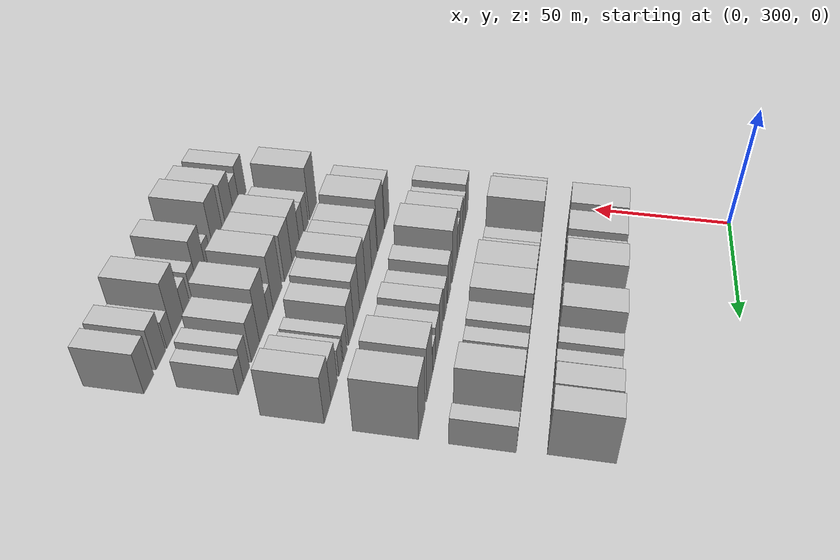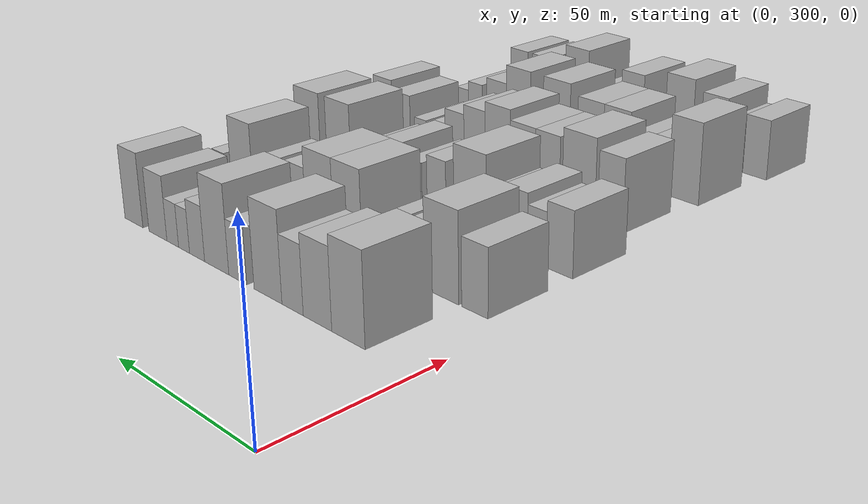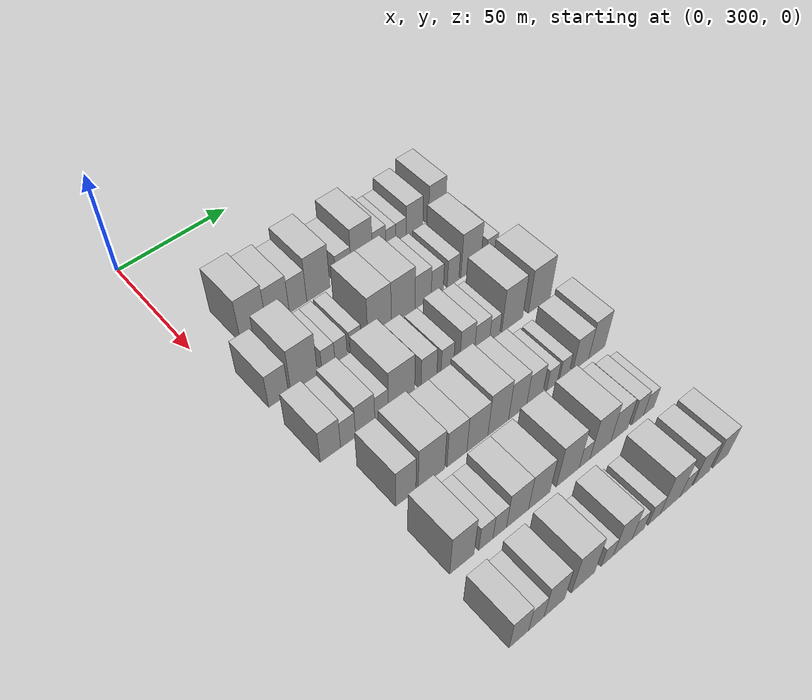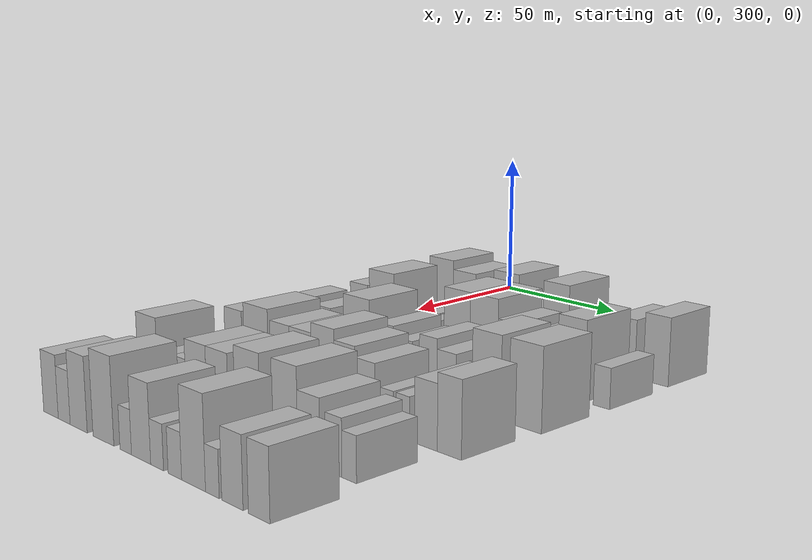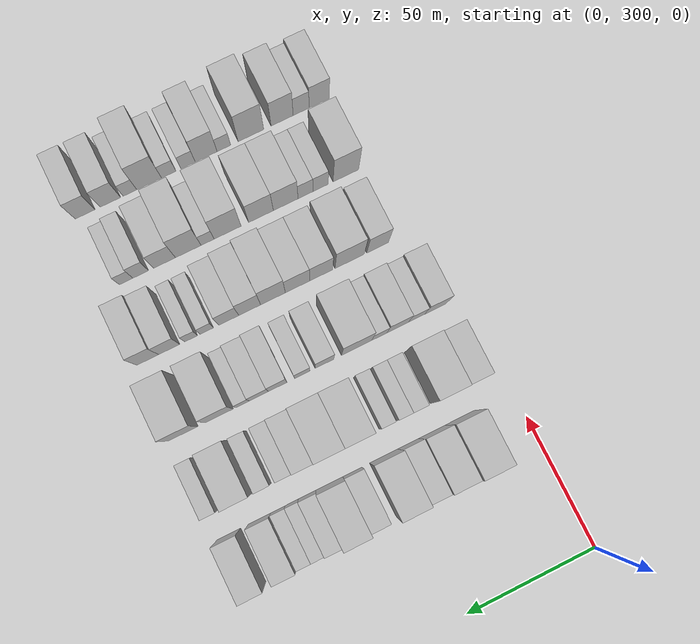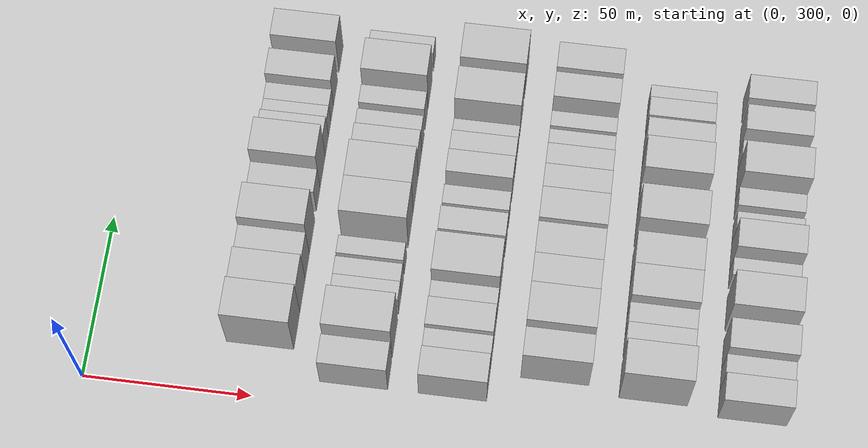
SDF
<sdf version="1.6">
 <world name="default">
  <model name="building_89">
   <static>1</static>
   <pose>50.0000 321.3980 0 0.000000 0.000000 0.000000</pose>
   <link name="link">
    <pose>0 0 12.00 0 0 0</pose>
    <collision name="collision"><geometry><box><size>20.0000 11.5874 24.0000</size></box></geometry></collision>
    <visual name="visual">
     <cast_shadows>0</cast_shadows>
     <geometry><box><size>20.0000 11.5874 24.0000</size></box></geometry>
     <material>
      <script>
       <uri>model://HANNAS_wall/materials/scripts</uri>
       <uri>model://HANNAS_wall/materials/textures</uri>
       <name>vrc/HANNAS_wall</name>
      </script>
     </material>
    </visual>
   </link>
  </model>
  <model name="building_90">
   <static>1</static>
   <pose>50.0000 332.3962 0 0.000000 0.000000 0.000000</pose>
   <link name="link">
    <pose>0 0 10.50 0 0 0</pose>
    <collision name="collision"><geometry><box><size>20.0000 10.4090 21.0000</size></box></geometry></collision>
    <visual name="visual">
     <cast_shadows>0</cast_shadows>
     <geometry><box><size>20.0000 10.4090 21.0000</size></box></geometry>
     <material>
      <script>
       <uri>model://HANNAS_wall/materials/scripts</uri>
       <uri>model://HANNAS_wall/materials/textures</uri>
       <name>vrc/HANNAS_wall</name>
      </script>
     </material>
    </visual>
   </link>
  </model>
  <model name="building_91">
   <static>1</static>
   <pose>50.0000 341.6545 0 0.000000 0.000000 0.000000</pose>
   <link name="link">
    <pose>0 0 9.00 0 0 0</pose>
    <collision name="collision"><geometry><box><size>20.0000 8.1077 18.0000</size></box></geometry></collision>
    <visual name="visual">
     <cast_shadows>0</cast_shadows>
     <geometry><box><size>20.0000 8.1077 18.0000</size></box></geometry>
     <material>
      <script>
       <uri>model://HANNAS_wall/materials/scripts</uri>
       <uri>model://HANNAS_wall/materials/textures</uri>
       <name>vrc/HANNAS_wall</name>
      </script>
     </material>
    </visual>
   </link>
  </model>
  <model name="building_92">
   <static>1</static>
   <pose>50.0000 351.2242 0 0.000000 0.000000 0.000000</pose>
   <link name="link">
    <pose>0 0 12.00 0 0 0</pose>
    <collision name="collision"><geometry><box><size>20.0000 11.0317 24.0000</size></box></geometry></collision>
    <visual name="visual">
     <cast_shadows>0</cast_shadows>
     <geometry><box><size>20.0000 11.0317 24.0000</size></box></geometry>
     <material>
      <script>
       <uri>model://HANNAS_wall/materials/scripts</uri>
       <uri>model://HANNAS_wall/materials/textures</uri>
       <name>vrc/HANNAS_wall</name>
      </script>
     </material>
    </visual>
   </link>
  </model>
  <model name="building_93">
   <static>1</static>
   <pose>50.0000 363.4700 0 0.000000 0.000000 0.000000</pose>
   <link name="link">
    <pose>0 0 7.50 0 0 0</pose>
    <collision name="collision"><geometry><box><size>20.0000 7.4601 15.0000</size></box></geometry></collision>
    <visual name="visual">
     <cast_shadows>0</cast_shadows>
     <geometry><box><size>20.0000 7.4601 15.0000</size></box></geometry>
     <material>
      <script>
       <uri>model://HANNAS_wall/materials/scripts</uri>
       <uri>model://HANNAS_wall/materials/textures</uri>
       <name>vrc/HANNAS_wall</name>
      </script>
     </material>
    </visual>
   </link>
  </model>
  <model name="building_94">
   <static>1</static>
   <pose>50.0000 372.4424 0 0.000000 0.000000 0.000000</pose>
   <link name="link">
    <pose>0 0 12.00 0 0 0</pose>
    <collision name="collision"><geometry><box><size>20.0000 10.4846 24.0000</size></box></geometry></collision>
    <visual name="visual">
     <cast_shadows>0</cast_shadows>
     <geometry><box><size>20.0000 10.4846 24.0000</size></box></geometry>
     <material>
      <script>
       <uri>model://HANNAS_wall/materials/scripts</uri>
       <uri>model://HANNAS_wall/materials/textures</uri>
       <name>vrc/HANNAS_wall</name>
      </script>
     </material>
    </visual>
   </link>
  </model>
  <model name="building_95">
   <static>1</static>
   <pose>50.0000 381.0466 0 0.000000 0.000000 0.000000</pose>
   <link name="link">
    <pose>0 0 7.50 0 0 0</pose>
    <collision name="collision"><geometry><box><size>20.0000 6.7238 15.0000</size></box></geometry></collision>
    <visual name="visual">
     <cast_shadows>0</cast_shadows>
     <geometry><box><size>20.0000 6.7238 15.0000</size></box></geometry>
     <material>
      <script>
       <uri>model://HANNAS_wall/materials/scripts</uri>
       <uri>model://HANNAS_wall/materials/textures</uri>
       <name>vrc/HANNAS_wall</name>
      </script>
     </material>
    </visual>
   </link>
  </model>
  <model name="building_96">
   <static>1</static>
   <pose>50.0000 386.9304 0 0.000000 0.000000 0.000000</pose>
   <link name="link">
    <pose>0 0 6.00 0 0 0</pose>
    <collision name="collision"><geometry><box><size>20.0000 5.0438 12.0000</size></box></geometry></collision>
    <visual name="visual">
     <cast_shadows>0</cast_shadows>
     <geometry><box><size>20.0000 5.0438 12.0000</size></box></geometry>
     <material>
      <script>
       <uri>model://HANNAS_wall/materials/scripts</uri>
       <uri>model://HANNAS_wall/materials/textures</uri>
       <name>vrc/HANNAS_wall</name>
      </script>
     </material>
    </visual>
   </link>
  </model>
  <model name="building_97">
   <static>1</static>
   <pose>50.0000 392.1922 0 0.000000 0.000000 0.000000</pose>
   <link name="link">
    <pose>0 0 6.00 0 0 0</pose>
    <collision name="collision"><geometry><box><size>20.0000 5.4799 12.0000</size></box></geometry></collision>
    <visual name="visual">
     <cast_shadows>0</cast_shadows>
     <geometry><box><size>20.0000 5.4799 12.0000</size></box></geometry>
     <material>
      <script>
       <uri>model://HANNAS_wall/materials/scripts</uri>
       <uri>model://HANNAS_wall/materials/textures</uri>
       <name>vrc/HANNAS_wall</name>
      </script>
     </material>
    </visual>
   </link>
  </model>
  <model name="building_98">
   <static>1</static>
   <pose>50.0000 399.2381 0 0.000000 0.000000 0.000000</pose>
   <link name="link">
    <pose>0 0 9.00 0 0 0</pose>
    <collision name="collision"><geometry><box><size>20.0000 8.6118 18.0000</size></box></geometry></collision>
    <visual name="visual">
     <cast_shadows>0</cast_shadows>
     <geometry><box><size>20.0000 8.6118 18.0000</size></box></geometry>
     <material>
      <script>
       <uri>model://HANNAS_wall/materials/scripts</uri>
       <uri>model://HANNAS_wall/materials/textures</uri>
       <name>vrc/HANNAS_wall</name>
      </script>
     </material>
    </visual>
   </link>
  </model>
  <model name="building_99">
   <static>1</static>
   <pose>50.0000 411.0259 0 0.000000 0.000000 0.000000</pose>
   <link name="link">
    <pose>0 0 10.50 0 0 0</pose>
    <collision name="collision"><geometry><box><size>20.0000 8.9638 21.0000</size></box></geometry></collision>
    <visual name="visual">
     <cast_shadows>0</cast_shadows>
     <geometry><box><size>20.0000 8.9638 21.0000</size></box></geometry>
     <material>
      <script>
       <uri>model://HANNAS_wall/materials/scripts</uri>
       <uri>model://HANNAS_wall/materials/textures</uri>
       <name>vrc/HANNAS_wall</name>
      </script>
     </material>
    </visual>
   </link>
  </model>
  <model name="building_203">
   <static>1</static>
   <pose>79.0000 311.1663 0 0.000000 0.000000 0.000000</pose>
   <link name="link">
    <pose>0 0 9.00 0 0 0</pose>
    <collision name="collision"><geometry><box><size>20.0000 8.6754 18.0000</size></box></geometry></collision>
    <visual name="visual">
     <cast_shadows>0</cast_shadows>
     <geometry><box><size>20.0000 8.6754 18.0000</size></box></geometry>
     <material>
      <script>
       <uri>model://HANNAS_wall/materials/scripts</uri>
       <uri>model://HANNAS_wall/materials/textures</uri>
       <name>vrc/HANNAS_wall</name>
      </script>
     </material>
    </visual>
   </link>
  </model>
  <model name="building_204">
   <static>1</static>
   <pose>79.0000 322.4119 0 0.000000 0.000000 0.000000</pose>
   <link name="link">
    <pose>0 0 12.00 0 0 0</pose>
    <collision name="collision"><geometry><box><size>20.0000 11.8157 24.0000</size></box></geometry></collision>
    <visual name="visual">
     <cast_shadows>0</cast_shadows>
     <geometry><box><size>20.0000 11.8157 24.0000</size></box></geometry>
     <material>
      <script>
       <uri>model://HANNAS_wall/materials/scripts</uri>
       <uri>model://HANNAS_wall/materials/textures</uri>
       <name>vrc/HANNAS_wall</name>
      </script>
     </material>
    </visual>
   </link>
  </model>
  <model name="building_205">
   <static>1</static>
   <pose>79.0000 333.2981 0 0.000000 0.000000 0.000000</pose>
   <link name="link">
    <pose>0 0 6.00 0 0 0</pose>
    <collision name="collision"><geometry><box><size>20.0000 5.9567 12.0000</size></box></geometry></collision>
    <visual name="visual">
     <cast_shadows>0</cast_shadows>
     <geometry><box><size>20.0000 5.9567 12.0000</size></box></geometry>
     <material>
      <script>
       <uri>model://HANNAS_wall/materials/scripts</uri>
       <uri>model://HANNAS_wall/materials/textures</uri>
       <name>vrc/HANNAS_wall</name>
      </script>
     </material>
    </visual>
   </link>
  </model>
  <model name="building_206">
   <static>1</static>
   <pose>79.0000 339.0503 0 0.000000 0.000000 0.000000</pose>
   <link name="link">
    <pose>0 0 6.00 0 0 0</pose>
    <collision name="collision"><geometry><box><size>20.0000 5.5478 12.0000</size></box></geometry></collision>
    <visual name="visual">
     <cast_shadows>0</cast_shadows>
     <geometry><box><size>20.0000 5.5478 12.0000</size></box></geometry>
     <material>
      <script>
       <uri>model://HANNAS_wall/materials/scripts</uri>
       <uri>model://HANNAS_wall/materials/textures</uri>
       <name>vrc/HANNAS_wall</name>
      </script>
     </material>
    </visual>
   </link>
  </model>
  <model name="building_207">
   <static>1</static>
   <pose>79.0000 345.6395 0 0.000000 0.000000 0.000000</pose>
   <link name="link">
    <pose>0 0 6.00 0 0 0</pose>
    <collision name="collision"><geometry><box><size>20.0000 5.6306 12.0000</size></box></geometry></collision>
    <visual name="visual">
     <cast_shadows>0</cast_shadows>
     <geometry><box><size>20.0000 5.6306 12.0000</size></box></geometry>
     <material>
      <script>
       <uri>model://HANNAS_wall/materials/scripts</uri>
       <uri>model://HANNAS_wall/materials/textures</uri>
       <name>vrc/HANNAS_wall</name>
      </script>
     </material>
    </visual>
   </link>
  </model>
  <model name="building_208">
   <static>1</static>
   <pose>79.0000 357.0507 0 0.000000 0.000000 0.000000</pose>
   <link name="link">
    <pose>0 0 12.00 0 0 0</pose>
    <collision name="collision"><geometry><box><size>20.0000 11.1918 24.0000</size></box></geometry></collision>
    <visual name="visual">
     <cast_shadows>0</cast_shadows>
     <geometry><box><size>20.0000 11.1918 24.0000</size></box></geometry>
     <material>
      <script>
       <uri>model://HANNAS_wall/materials/scripts</uri>
       <uri>model://HANNAS_wall/materials/textures</uri>
       <name>vrc/HANNAS_wall</name>
      </script>
     </material>
    </visual>
   </link>
  </model>
  <model name="building_209">
   <static>1</static>
   <pose>79.0000 368.3990 0 0.000000 0.000000 0.000000</pose>
   <link name="link">
    <pose>0 0 12.00 0 0 0</pose>
    <collision name="collision"><geometry><box><size>20.0000 11.5048 24.0000</size></box></geometry></collision>
    <visual name="visual">
     <cast_shadows>0</cast_shadows>
     <geometry><box><size>20.0000 11.5048 24.0000</size></box></geometry>
     <material>
      <script>
       <uri>model://HANNAS_wall/materials/scripts</uri>
       <uri>model://HANNAS_wall/materials/textures</uri>
       <name>vrc/HANNAS_wall</name>
      </script>
     </material>
    </visual>
   </link>
  </model>
  <model name="building_210">
   <static>1</static>
   <pose>79.0000 378.1976 0 0.000000 0.000000 0.000000</pose>
   <link name="link">
    <pose>0 0 9.00 0 0 0</pose>
    <collision name="collision"><geometry><box><size>20.0000 8.0924 18.0000</size></box></geometry></collision>
    <visual name="visual">
     <cast_shadows>0</cast_shadows>
     <geometry><box><size>20.0000 8.0924 18.0000</size></box></geometry>
     <material>
      <script>
       <uri>model://HANNAS_wall/materials/scripts</uri>
       <uri>model://HANNAS_wall/materials/textures</uri>
       <name>vrc/HANNAS_wall</name>
      </script>
     </material>
    </visual>
   </link>
  </model>
  <model name="building_211">
   <static>1</static>
   <pose>79.0000 385.3006 0 0.000000 0.000000 0.000000</pose>
   <link name="link">
    <pose>0 0 7.50 0 0 0</pose>
    <collision name="collision"><geometry><box><size>20.0000 6.1135 15.0000</size></box></geometry></collision>
    <visual name="visual">
     <cast_shadows>0</cast_shadows>
     <geometry><box><size>20.0000 6.1135 15.0000</size></box></geometry>
     <material>
      <script>
       <uri>model://HANNAS_wall/materials/scripts</uri>
       <uri>model://HANNAS_wall/materials/textures</uri>
       <name>vrc/HANNAS_wall</name>
      </script>
     </material>
    </visual>
   </link>
  </model>
  <model name="building_212">
   <static>1</static>
   <pose>79.0000 393.3649 0 0.000000 0.000000 0.000000</pose>
   <link name="link">
    <pose>0 0 7.50 0 0 0</pose>
    <collision name="collision"><geometry><box><size>20.0000 6.0150 15.0000</size></box></geometry></collision>
    <visual name="visual">
     <cast_shadows>0</cast_shadows>
     <geometry><box><size>20.0000 6.0150 15.0000</size></box></geometry>
     <material>
      <script>
       <uri>model://HANNAS_wall/materials/scripts</uri>
       <uri>model://HANNAS_wall/materials/textures</uri>
       <name>vrc/HANNAS_wall</name>
      </script>
     </material>
    </visual>
   </link>
  </model>
  <model name="building_213">
   <static>1</static>
   <pose>79.0000 402.4878 0 0.000000 0.000000 0.000000</pose>
   <link name="link">
    <pose>0 0 12.00 0 0 0</pose>
    <collision name="collision"><geometry><box><size>20.0000 10.2309 24.0000</size></box></geometry></collision>
    <visual name="visual">
     <cast_shadows>0</cast_shadows>
     <geometry><box><size>20.0000 10.2309 24.0000</size></box></geometry>
     <material>
      <script>
       <uri>model://HANNAS_wall/materials/scripts</uri>
       <uri>model://HANNAS_wall/materials/textures</uri>
       <name>vrc/HANNAS_wall</name>
      </script>
     </material>
    </visual>
   </link>
  </model>
  <model name="building_214">
   <static>1</static>
   <pose>79.0000 413.4826 0 0.000000 0.000000 0.000000</pose>
   <link name="link">
    <pose>0 0 6.00 0 0 0</pose>
    <collision name="collision"><geometry><box><size>20.0000 5.7587 12.0000</size></box></geometry></collision>
    <visual name="visual">
     <cast_shadows>0</cast_shadows>
     <geometry><box><size>20.0000 5.7587 12.0000</size></box></geometry>
     <material>
      <script>
       <uri>model://HANNAS_wall/materials/scripts</uri>
       <uri>model://HANNAS_wall/materials/textures</uri>
       <name>vrc/HANNAS_wall</name>
      </script>
     </material>
    </visual>
   </link>
  </model>
  <model name="building_313">
   <static>1</static>
   <pose>108.0000 311.2907 0 0.000000 0.000000 0.000000</pose>
   <link name="link">
    <pose>0 0 9.00 0 0 0</pose>
    <collision name="collision"><geometry><box><size>20.0000 8.7245 18.0000</size></box></geometry></collision>
    <visual name="visual">
     <cast_shadows>0</cast_shadows>
     <geometry><box><size>20.0000 8.7245 18.0000</size></box></geometry>
     <material>
      <script>
       <uri>model://HANNAS_wall/materials/scripts</uri>
       <uri>model://HANNAS_wall/materials/textures</uri>
       <name>vrc/HANNAS_wall</name>
      </script>
     </material>
    </visual>
   </link>
  </model>
  <model name="building_314">
   <static>1</static>
   <pose>108.0000 318.9091 0 0.000000 0.000000 0.000000</pose>
   <link name="link">
    <pose>0 0 7.50 0 0 0</pose>
    <collision name="collision"><geometry><box><size>20.0000 6.5122 15.0000</size></box></geometry></collision>
    <visual name="visual">
     <cast_shadows>0</cast_shadows>
     <geometry><box><size>20.0000 6.5122 15.0000</size></box></geometry>
     <material>
      <script>
       <uri>model://HANNAS_wall/materials/scripts</uri>
       <uri>model://HANNAS_wall/materials/textures</uri>
       <name>vrc/HANNAS_wall</name>
      </script>
     </material>
    </visual>
   </link>
  </model>
  <model name="building_315">
   <static>1</static>
   <pose>108.0000 326.4444 0 0.000000 0.000000 0.000000</pose>
   <link name="link">
    <pose>0 0 9.00 0 0 0</pose>
    <collision name="collision"><geometry><box><size>20.0000 8.5585 18.0000</size></box></geometry></collision>
    <visual name="visual">
     <cast_shadows>0</cast_shadows>
     <geometry><box><size>20.0000 8.5585 18.0000</size></box></geometry>
     <material>
      <script>
       <uri>model://HANNAS_wall/materials/scripts</uri>
       <uri>model://HANNAS_wall/materials/textures</uri>
       <name>vrc/HANNAS_wall</name>
      </script>
     </material>
    </visual>
   </link>
  </model>
  <model name="building_316">
   <static>1</static>
   <pose>108.0000 333.7687 0 0.000000 0.000000 0.000000</pose>
   <link name="link">
    <pose>0 0 7.50 0 0 0</pose>
    <collision name="collision"><geometry><box><size>20.0000 6.0901 15.0000</size></box></geometry></collision>
    <visual name="visual">
     <cast_shadows>0</cast_shadows>
     <geometry><box><size>20.0000 6.0901 15.0000</size></box></geometry>
     <material>
      <script>
       <uri>model://HANNAS_wall/materials/scripts</uri>
       <uri>model://HANNAS_wall/materials/textures</uri>
       <name>vrc/HANNAS_wall</name>
      </script>
     </material>
    </visual>
   </link>
  </model>
  <model name="building_317">
   <static>1</static>
   <pose>108.0000 342.7837 0 0.000000 0.000000 0.000000</pose>
   <link name="link">
    <pose>0 0 12.00 0 0 0</pose>
    <collision name="collision"><geometry><box><size>20.0000 11.9399 24.0000</size></box></geometry></collision>
    <visual name="visual">
     <cast_shadows>0</cast_shadows>
     <geometry><box><size>20.0000 11.9399 24.0000</size></box></geometry>
     <material>
      <script>
       <uri>model://HANNAS_wall/materials/scripts</uri>
       <uri>model://HANNAS_wall/materials/textures</uri>
       <name>vrc/HANNAS_wall</name>
      </script>
     </material>
    </visual>
   </link>
  </model>
  <model name="building_318">
   <static>1</static>
   <pose>108.0000 355.4357 0 0.000000 0.000000 0.000000</pose>
   <link name="link">
    <pose>0 0 9.00 0 0 0</pose>
    <collision name="collision"><geometry><box><size>20.0000 7.3642 18.0000</size></box></geometry></collision>
    <visual name="visual">
     <cast_shadows>0</cast_shadows>
     <geometry><box><size>20.0000 7.3642 18.0000</size></box></geometry>
     <material>
      <script>
       <uri>model://HANNAS_wall/materials/scripts</uri>
       <uri>model://HANNAS_wall/materials/textures</uri>
       <name>vrc/HANNAS_wall</name>
      </script>
     </material>
    </visual>
   </link>
  </model>
  <model name="building_319">
   <static>1</static>
   <pose>108.0000 364.1421 0 0.000000 0.000000 0.000000</pose>
   <link name="link">
    <pose>0 0 7.50 0 0 0</pose>
    <collision name="collision"><geometry><box><size>20.0000 6.0486 15.0000</size></box></geometry></collision>
    <visual name="visual">
     <cast_shadows>0</cast_shadows>
     <geometry><box><size>20.0000 6.0486 15.0000</size></box></geometry>
     <material>
      <script>
       <uri>model://HANNAS_wall/materials/scripts</uri>
       <uri>model://HANNAS_wall/materials/textures</uri>
       <name>vrc/HANNAS_wall</name>
      </script>
     </material>
    </visual>
   </link>
  </model>
  <model name="building_320">
   <static>1</static>
   <pose>108.0000 373.7871 0 0.000000 0.000000 0.000000</pose>
   <link name="link">
    <pose>0 0 9.00 0 0 0</pose>
    <collision name="collision"><geometry><box><size>20.0000 7.2414 18.0000</size></box></geometry></collision>
    <visual name="visual">
     <cast_shadows>0</cast_shadows>
     <geometry><box><size>20.0000 7.2414 18.0000</size></box></geometry>
     <material>
      <script>
       <uri>model://HANNAS_wall/materials/scripts</uri>
       <uri>model://HANNAS_wall/materials/textures</uri>
       <name>vrc/HANNAS_wall</name>
      </script>
     </material>
    </visual>
   </link>
  </model>
  <model name="building_321">
   <static>1</static>
   <pose>108.0000 381.1521 0 0.000000 0.000000 0.000000</pose>
   <link name="link">
    <pose>0 0 7.50 0 0 0</pose>
    <collision name="collision"><geometry><box><size>20.0000 7.4886 15.0000</size></box></geometry></collision>
    <visual name="visual">
     <cast_shadows>0</cast_shadows>
     <geometry><box><size>20.0000 7.4886 15.0000</size></box></geometry>
     <material>
      <script>
       <uri>model://HANNAS_wall/materials/scripts</uri>
       <uri>model://HANNAS_wall/materials/textures</uri>
       <name>vrc/HANNAS_wall</name>
      </script>
     </material>
    </visual>
   </link>
  </model>
  <model name="building_322">
   <static>1</static>
   <pose>108.0000 387.4862 0 0.000000 0.000000 0.000000</pose>
   <link name="link">
    <pose>0 0 6.00 0 0 0</pose>
    <collision name="collision"><geometry><box><size>20.0000 5.1796 12.0000</size></box></geometry></collision>
    <visual name="visual">
     <cast_shadows>0</cast_shadows>
     <geometry><box><size>20.0000 5.1796 12.0000</size></box></geometry>
     <material>
      <script>
       <uri>model://HANNAS_wall/materials/scripts</uri>
       <uri>model://HANNAS_wall/materials/textures</uri>
       <name>vrc/HANNAS_wall</name>
      </script>
     </material>
    </visual>
   </link>
  </model>
  <model name="building_323">
   <static>1</static>
   <pose>108.0000 396.4554 0 0.000000 0.000000 0.000000</pose>
   <link name="link">
    <pose>0 0 12.00 0 0 0</pose>
    <collision name="collision"><geometry><box><size>20.0000 10.7587 24.0000</size></box></geometry></collision>
    <visual name="visual">
     <cast_shadows>0</cast_shadows>
     <geometry><box><size>20.0000 10.7587 24.0000</size></box></geometry>
     <material>
      <script>
       <uri>model://HANNAS_wall/materials/scripts</uri>
       <uri>model://HANNAS_wall/materials/textures</uri>
       <name>vrc/HANNAS_wall</name>
      </script>
     </material>
    </visual>
   </link>
  </model>
  <model name="building_324">
   <static>1</static>
   <pose>108.0000 410.5487 0 0.000000 0.000000 0.000000</pose>
   <link name="link">
    <pose>0 0 12.00 0 0 0</pose>
    <collision name="collision"><geometry><box><size>20.0000 11.4279 24.0000</size></box></geometry></collision>
    <visual name="visual">
     <cast_shadows>0</cast_shadows>
     <geometry><box><size>20.0000 11.4279 24.0000</size></box></geometry>
     <material>
      <script>
       <uri>model://HANNAS_wall/materials/scripts</uri>
       <uri>model://HANNAS_wall/materials/textures</uri>
       <name>vrc/HANNAS_wall</name>
      </script>
     </material>
    </visual>
   </link>
  </model>
  <model name="building_421">
   <static>1</static>
   <pose>137.0000 319.7330 0 0.000000 0.000000 0.000000</pose>
   <link name="link">
    <pose>0 0 10.50 0 0 0</pose>
    <collision name="collision"><geometry><box><size>20.0000 8.7053 21.0000</size></box></geometry></collision>
    <visual name="visual">
     <cast_shadows>0</cast_shadows>
     <geometry><box><size>20.0000 8.7053 21.0000</size></box></geometry>
     <material>
      <script>
       <uri>model://HANNAS_wall/materials/scripts</uri>
       <uri>model://HANNAS_wall/materials/textures</uri>
       <name>vrc/HANNAS_wall</name>
      </script>
     </material>
    </visual>
   </link>
  </model>
  <model name="building_422">
   <static>1</static>
   <pose>137.0000 330.9472 0 0.000000 0.000000 0.000000</pose>
   <link name="link">
    <pose>0 0 12.00 0 0 0</pose>
    <collision name="collision"><geometry><box><size>20.0000 11.7231 24.0000</size></box></geometry></collision>
    <visual name="visual">
     <cast_shadows>0</cast_shadows>
     <geometry><box><size>20.0000 11.7231 24.0000</size></box></geometry>
     <material>
      <script>
       <uri>model://HANNAS_wall/materials/scripts</uri>
       <uri>model://HANNAS_wall/materials/textures</uri>
       <name>vrc/HANNAS_wall</name>
      </script>
     </material>
    </visual>
   </link>
  </model>
  <model name="building_423">
   <static>1</static>
   <pose>137.0000 342.3413 0 0.000000 0.000000 0.000000</pose>
   <link name="link">
    <pose>0 0 10.50 0 0 0</pose>
    <collision name="collision"><geometry><box><size>20.0000 9.0650 21.0000</size></box></geometry></collision>
    <visual name="visual">
     <cast_shadows>0</cast_shadows>
     <geometry><box><size>20.0000 9.0650 21.0000</size></box></geometry>
     <material>
      <script>
       <uri>model://HANNAS_wall/materials/scripts</uri>
       <uri>model://HANNAS_wall/materials/textures</uri>
       <name>vrc/HANNAS_wall</name>
      </script>
     </material>
    </visual>
   </link>
  </model>
  <model name="building_424">
   <static>1</static>
   <pose>137.0000 351.7460 0 0.000000 0.000000 0.000000</pose>
   <link name="link">
    <pose>0 0 10.50 0 0 0</pose>
    <collision name="collision"><geometry><box><size>20.0000 9.7444 21.0000</size></box></geometry></collision>
    <visual name="visual">
     <cast_shadows>0</cast_shadows>
     <geometry><box><size>20.0000 9.7444 21.0000</size></box></geometry>
     <material>
      <script>
       <uri>model://HANNAS_wall/materials/scripts</uri>
       <uri>model://HANNAS_wall/materials/textures</uri>
       <name>vrc/HANNAS_wall</name>
      </script>
     </material>
    </visual>
   </link>
  </model>
  <model name="building_425">
   <static>1</static>
   <pose>137.0000 361.5297 0 0.000000 0.000000 0.000000</pose>
   <link name="link">
    <pose>0 0 12.00 0 0 0</pose>
    <collision name="collision"><geometry><box><size>20.0000 9.8230 24.0000</size></box></geometry></collision>
    <visual name="visual">
     <cast_shadows>0</cast_shadows>
     <geometry><box><size>20.0000 9.8230 24.0000</size></box></geometry>
     <material>
      <script>
       <uri>model://HANNAS_wall/materials/scripts</uri>
       <uri>model://HANNAS_wall/materials/textures</uri>
       <name>vrc/HANNAS_wall</name>
      </script>
     </material>
    </visual>
   </link>
  </model>
  <model name="building_426">
   <static>1</static>
   <pose>137.0000 370.7570 0 0.000000 0.000000 0.000000</pose>
   <link name="link">
    <pose>0 0 10.50 0 0 0</pose>
    <collision name="collision"><geometry><box><size>20.0000 8.6314 21.0000</size></box></geometry></collision>
    <visual name="visual">
     <cast_shadows>0</cast_shadows>
     <geometry><box><size>20.0000 8.6314 21.0000</size></box></geometry>
     <material>
      <script>
       <uri>model://HANNAS_wall/materials/scripts</uri>
       <uri>model://HANNAS_wall/materials/textures</uri>
       <name>vrc/HANNAS_wall</name>
      </script>
     </material>
    </visual>
   </link>
  </model>
  <model name="building_427">
   <static>1</static>
   <pose>137.0000 379.0473 0 0.000000 0.000000 0.000000</pose>
   <link name="link">
    <pose>0 0 9.00 0 0 0</pose>
    <collision name="collision"><geometry><box><size>20.0000 7.9493 18.0000</size></box></geometry></collision>
    <visual name="visual">
     <cast_shadows>0</cast_shadows>
     <geometry><box><size>20.0000 7.9493 18.0000</size></box></geometry>
     <material>
      <script>
       <uri>model://HANNAS_wall/materials/scripts</uri>
       <uri>model://HANNAS_wall/materials/textures</uri>
       <name>vrc/HANNAS_wall</name>
      </script>
     </material>
    </visual>
   </link>
  </model>
  <model name="building_428">
   <static>1</static>
   <pose>137.0000 387.6533 0 0.000000 0.000000 0.000000</pose>
   <link name="link">
    <pose>0 0 6.00 0 0 0</pose>
    <collision name="collision"><geometry><box><size>20.0000 5.2627 12.0000</size></box></geometry></collision>
    <visual name="visual">
     <cast_shadows>0</cast_shadows>
     <geometry><box><size>20.0000 5.2627 12.0000</size></box></geometry>
     <material>
      <script>
       <uri>model://HANNAS_wall/materials/scripts</uri>
       <uri>model://HANNAS_wall/materials/textures</uri>
       <name>vrc/HANNAS_wall</name>
      </script>
     </material>
    </visual>
   </link>
  </model>
  <model name="building_429">
   <static>1</static>
   <pose>137.0000 393.8041 0 0.000000 0.000000 0.000000</pose>
   <link name="link">
    <pose>0 0 6.00 0 0 0</pose>
    <collision name="collision"><geometry><box><size>20.0000 5.0388 12.0000</size></box></geometry></collision>
    <visual name="visual">
     <cast_shadows>0</cast_shadows>
     <geometry><box><size>20.0000 5.0388 12.0000</size></box></geometry>
     <material>
      <script>
       <uri>model://HANNAS_wall/materials/scripts</uri>
       <uri>model://HANNAS_wall/materials/textures</uri>
       <name>vrc/HANNAS_wall</name>
      </script>
     </material>
    </visual>
   </link>
  </model>
  <model name="building_430">
   <static>1</static>
   <pose>137.0000 402.4414 0 0.000000 0.000000 0.000000</pose>
   <link name="link">
    <pose>0 0 9.00 0 0 0</pose>
    <collision name="collision"><geometry><box><size>20.0000 8.2358 18.0000</size></box></geometry></collision>
    <visual name="visual">
     <cast_shadows>0</cast_shadows>
     <geometry><box><size>20.0000 8.2358 18.0000</size></box></geometry>
     <material>
      <script>
       <uri>model://HANNAS_wall/materials/scripts</uri>
       <uri>model://HANNAS_wall/materials/textures</uri>
       <name>vrc/HANNAS_wall</name>
      </script>
     </material>
    </visual>
   </link>
  </model>
  <model name="building_431">
   <static>1</static>
   <pose>137.0000 410.7942 0 0.000000 0.000000 0.000000</pose>
   <link name="link">
    <pose>0 0 10.50 0 0 0</pose>
    <collision name="collision"><geometry><box><size>20.0000 8.4696 21.0000</size></box></geometry></collision>
    <visual name="visual">
     <cast_shadows>0</cast_shadows>
     <geometry><box><size>20.0000 8.4696 21.0000</size></box></geometry>
     <material>
      <script>
       <uri>model://HANNAS_wall/materials/scripts</uri>
       <uri>model://HANNAS_wall/materials/textures</uri>
       <name>vrc/HANNAS_wall</name>
      </script>
     </material>
    </visual>
   </link>
  </model>
  <model name="building_537">
   <static>1</static>
   <pose>166.0000 317.9651 0 0.000000 0.000000 0.000000</pose>
   <link name="link">
    <pose>0 0 12.00 0 0 0</pose>
    <collision name="collision"><geometry><box><size>20.0000 10.3799 24.0000</size></box></geometry></collision>
    <visual name="visual">
     <cast_shadows>0</cast_shadows>
     <geometry><box><size>20.0000 10.3799 24.0000</size></box></geometry>
     <material>
      <script>
       <uri>model://HANNAS_wall/materials/scripts</uri>
       <uri>model://HANNAS_wall/materials/textures</uri>
       <name>vrc/HANNAS_wall</name>
      </script>
     </material>
    </visual>
   </link>
  </model>
  <model name="building_538">
   <static>1</static>
   <pose>166.0000 328.2372 0 0.000000 0.000000 0.000000</pose>
   <link name="link">
    <pose>0 0 7.50 0 0 0</pose>
    <collision name="collision"><geometry><box><size>20.0000 6.1642 15.0000</size></box></geometry></collision>
    <visual name="visual">
     <cast_shadows>0</cast_shadows>
     <geometry><box><size>20.0000 6.1642 15.0000</size></box></geometry>
     <material>
      <script>
       <uri>model://HANNAS_wall/materials/scripts</uri>
       <uri>model://HANNAS_wall/materials/textures</uri>
       <name>vrc/HANNAS_wall</name>
      </script>
     </material>
    </visual>
   </link>
  </model>
  <model name="building_539">
   <static>1</static>
   <pose>166.0000 334.3260 0 0.000000 0.000000 0.000000</pose>
   <link name="link">
    <pose>0 0 7.50 0 0 0</pose>
    <collision name="collision"><geometry><box><size>20.0000 6.0134 15.0000</size></box></geometry></collision>
    <visual name="visual">
     <cast_shadows>0</cast_shadows>
     <geometry><box><size>20.0000 6.0134 15.0000</size></box></geometry>
     <material>
      <script>
       <uri>model://HANNAS_wall/materials/scripts</uri>
       <uri>model://HANNAS_wall/materials/textures</uri>
       <name>vrc/HANNAS_wall</name>
      </script>
     </material>
    </visual>
   </link>
  </model>
  <model name="building_540">
   <static>1</static>
   <pose>166.0000 342.3126 0 0.000000 0.000000 0.000000</pose>
   <link name="link">
    <pose>0 0 10.50 0 0 0</pose>
    <collision name="collision"><geometry><box><size>20.0000 9.9598 21.0000</size></box></geometry></collision>
    <visual name="visual">
     <cast_shadows>0</cast_shadows>
     <geometry><box><size>20.0000 9.9598 21.0000</size></box></geometry>
     <material>
      <script>
       <uri>model://HANNAS_wall/materials/scripts</uri>
       <uri>model://HANNAS_wall/materials/textures</uri>
       <name>vrc/HANNAS_wall</name>
      </script>
     </material>
    </visual>
   </link>
  </model>
  <model name="building_541">
   <static>1</static>
   <pose>166.0000 352.2614 0 0.000000 0.000000 0.000000</pose>
   <link name="link">
    <pose>0 0 10.50 0 0 0</pose>
    <collision name="collision"><geometry><box><size>20.0000 9.9377 21.0000</size></box></geometry></collision>
    <visual name="visual">
     <cast_shadows>0</cast_shadows>
     <geometry><box><size>20.0000 9.9377 21.0000</size></box></geometry>
     <material>
      <script>
       <uri>model://HANNAS_wall/materials/scripts</uri>
       <uri>model://HANNAS_wall/materials/textures</uri>
       <name>vrc/HANNAS_wall</name>
      </script>
     </material>
    </visual>
   </link>
  </model>
  <model name="building_542">
   <static>1</static>
   <pose>166.0000 365.6210 0 0.000000 0.000000 0.000000</pose>
   <link name="link">
    <pose>0 0 12.00 0 0 0</pose>
    <collision name="collision"><geometry><box><size>20.0000 10.7815 24.0000</size></box></geometry></collision>
    <visual name="visual">
     <cast_shadows>0</cast_shadows>
     <geometry><box><size>20.0000 10.7815 24.0000</size></box></geometry>
     <material>
      <script>
       <uri>model://HANNAS_wall/materials/scripts</uri>
       <uri>model://HANNAS_wall/materials/textures</uri>
       <name>vrc/HANNAS_wall</name>
      </script>
     </material>
    </visual>
   </link>
  </model>
  <model name="building_543">
   <static>1</static>
   <pose>166.0000 373.6199 0 0.000000 0.000000 0.000000</pose>
   <link name="link">
    <pose>0 0 6.00 0 0 0</pose>
    <collision name="collision"><geometry><box><size>20.0000 5.2164 12.0000</size></box></geometry></collision>
    <visual name="visual">
     <cast_shadows>0</cast_shadows>
     <geometry><box><size>20.0000 5.2164 12.0000</size></box></geometry>
     <material>
      <script>
       <uri>model://HANNAS_wall/materials/scripts</uri>
       <uri>model://HANNAS_wall/materials/textures</uri>
       <name>vrc/HANNAS_wall</name>
      </script>
     </material>
    </visual>
   </link>
  </model>
  <model name="building_544">
   <static>1</static>
   <pose>166.0000 381.3114 0 0.000000 0.000000 0.000000</pose>
   <link name="link">
    <pose>0 0 12.00 0 0 0</pose>
    <collision name="collision"><geometry><box><size>20.0000 10.1666 24.0000</size></box></geometry></collision>
    <visual name="visual">
     <cast_shadows>0</cast_shadows>
     <geometry><box><size>20.0000 10.1666 24.0000</size></box></geometry>
     <material>
      <script>
       <uri>model://HANNAS_wall/materials/scripts</uri>
       <uri>model://HANNAS_wall/materials/textures</uri>
       <name>vrc/HANNAS_wall</name>
      </script>
     </material>
    </visual>
   </link>
  </model>
  <model name="building_545">
   <static>1</static>
   <pose>166.0000 390.7432 0 0.000000 0.000000 0.000000</pose>
   <link name="link">
    <pose>0 0 9.00 0 0 0</pose>
    <collision name="collision"><geometry><box><size>20.0000 8.6969 18.0000</size></box></geometry></collision>
    <visual name="visual">
     <cast_shadows>0</cast_shadows>
     <geometry><box><size>20.0000 8.6969 18.0000</size></box></geometry>
     <material>
      <script>
       <uri>model://HANNAS_wall/materials/scripts</uri>
       <uri>model://HANNAS_wall/materials/textures</uri>
       <name>vrc/HANNAS_wall</name>
      </script>
     </material>
    </visual>
   </link>
  </model>
  <model name="building_546">
   <static>1</static>
   <pose>166.0000 400.1652 0 0.000000 0.000000 0.000000</pose>
   <link name="link">
    <pose>0 0 7.50 0 0 0</pose>
    <collision name="collision"><geometry><box><size>20.0000 6.1471 15.0000</size></box></geometry></collision>
    <visual name="visual">
     <cast_shadows>0</cast_shadows>
     <geometry><box><size>20.0000 6.1471 15.0000</size></box></geometry>
     <material>
      <script>
       <uri>model://HANNAS_wall/materials/scripts</uri>
       <uri>model://HANNAS_wall/materials/textures</uri>
       <name>vrc/HANNAS_wall</name>
      </script>
     </material>
    </visual>
   </link>
  </model>
  <model name="building_547">
   <static>1</static>
   <pose>166.0000 405.9046 0 0.000000 0.000000 0.000000</pose>
   <link name="link">
    <pose>0 0 6.00 0 0 0</pose>
    <collision name="collision"><geometry><box><size>20.0000 5.3317 12.0000</size></box></geometry></collision>
    <visual name="visual">
     <cast_shadows>0</cast_shadows>
     <geometry><box><size>20.0000 5.3317 12.0000</size></box></geometry>
     <material>
      <script>
       <uri>model://HANNAS_wall/materials/scripts</uri>
       <uri>model://HANNAS_wall/materials/textures</uri>
       <name>vrc/HANNAS_wall</name>
      </script>
     </material>
    </visual>
   </link>
  </model>
  <model name="building_657">
   <static>1</static>
   <pose>195.0000 314.4681 0 0.000000 0.000000 0.000000</pose>
   <link name="link">
    <pose>0 0 9.00 0 0 0</pose>
    <collision name="collision"><geometry><box><size>20.0000 8.1866 18.0000</size></box></geometry></collision>
    <visual name="visual">
     <cast_shadows>0</cast_shadows>
     <geometry><box><size>20.0000 8.1866 18.0000</size></box></geometry>
     <material>
      <script>
       <uri>model://HANNAS_wall/materials/scripts</uri>
       <uri>model://HANNAS_wall/materials/textures</uri>
       <name>vrc/HANNAS_wall</name>
      </script>
     </material>
    </visual>
   </link>
  </model>
  <model name="building_658">
   <static>1</static>
   <pose>195.0000 321.8194 0 0.000000 0.000000 0.000000</pose>
   <link name="link">
    <pose>0 0 7.50 0 0 0</pose>
    <collision name="collision"><geometry><box><size>20.0000 6.5160 15.0000</size></box></geometry></collision>
    <visual name="visual">
     <cast_shadows>0</cast_shadows>
     <geometry><box><size>20.0000 6.5160 15.0000</size></box></geometry>
     <material>
      <script>
       <uri>model://HANNAS_wall/materials/scripts</uri>
       <uri>model://HANNAS_wall/materials/textures</uri>
       <name>vrc/HANNAS_wall</name>
      </script>
     </material>
    </visual>
   </link>
  </model>
  <model name="building_659">
   <static>1</static>
   <pose>195.0000 329.5865 0 0.000000 0.000000 0.000000</pose>
   <link name="link">
    <pose>0 0 10.50 0 0 0</pose>
    <collision name="collision"><geometry><box><size>20.0000 9.0182 21.0000</size></box></geometry></collision>
    <visual name="visual">
     <cast_shadows>0</cast_shadows>
     <geometry><box><size>20.0000 9.0182 21.0000</size></box></geometry>
     <material>
      <script>
       <uri>model://HANNAS_wall/materials/scripts</uri>
       <uri>model://HANNAS_wall/materials/textures</uri>
       <name>vrc/HANNAS_wall</name>
      </script>
     </material>
    </visual>
   </link>
  </model>
  <model name="building_660">
   <static>1</static>
   <pose>195.0000 342.3068 0 0.000000 0.000000 0.000000</pose>
   <link name="link">
    <pose>0 0 12.00 0 0 0</pose>
    <collision name="collision"><geometry><box><size>20.0000 10.4222 24.0000</size></box></geometry></collision>
    <visual name="visual">
     <cast_shadows>0</cast_shadows>
     <geometry><box><size>20.0000 10.4222 24.0000</size></box></geometry>
     <material>
      <script>
       <uri>model://HANNAS_wall/materials/scripts</uri>
       <uri>model://HANNAS_wall/materials/textures</uri>
       <name>vrc/HANNAS_wall</name>
      </script>
     </material>
    </visual>
   </link>
  </model>
  <model name="building_661">
   <static>1</static>
   <pose>195.0000 353.2623 0 0.000000 0.000000 0.000000</pose>
   <link name="link">
    <pose>0 0 6.00 0 0 0</pose>
    <collision name="collision"><geometry><box><size>20.0000 5.4889 12.0000</size></box></geometry></collision>
    <visual name="visual">
     <cast_shadows>0</cast_shadows>
     <geometry><box><size>20.0000 5.4889 12.0000</size></box></geometry>
     <material>
      <script>
       <uri>model://HANNAS_wall/materials/scripts</uri>
       <uri>model://HANNAS_wall/materials/textures</uri>
       <name>vrc/HANNAS_wall</name>
      </script>
     </material>
    </visual>
   </link>
  </model>
  <model name="building_662">
   <static>1</static>
   <pose>195.0000 360.4369 0 0.000000 0.000000 0.000000</pose>
   <link name="link">
    <pose>0 0 10.50 0 0 0</pose>
    <collision name="collision"><geometry><box><size>20.0000 8.8603 21.0000</size></box></geometry></collision>
    <visual name="visual">
     <cast_shadows>0</cast_shadows>
     <geometry><box><size>20.0000 8.8603 21.0000</size></box></geometry>
     <material>
      <script>
       <uri>model://HANNAS_wall/materials/scripts</uri>
       <uri>model://HANNAS_wall/materials/textures</uri>
       <name>vrc/HANNAS_wall</name>
      </script>
     </material>
    </visual>
   </link>
  </model>
  <model name="building_663">
   <static>1</static>
   <pose>195.0000 367.7352 0 0.000000 0.000000 0.000000</pose>
   <link name="link">
    <pose>0 0 6.00 0 0 0</pose>
    <collision name="collision"><geometry><box><size>20.0000 5.7364 12.0000</size></box></geometry></collision>
    <visual name="visual">
     <cast_shadows>0</cast_shadows>
     <geometry><box><size>20.0000 5.7364 12.0000</size></box></geometry>
     <material>
      <script>
       <uri>model://HANNAS_wall/materials/scripts</uri>
       <uri>model://HANNAS_wall/materials/textures</uri>
       <name>vrc/HANNAS_wall</name>
      </script>
     </material>
    </visual>
   </link>
  </model>
  <model name="building_664">
   <static>1</static>
   <pose>195.0000 375.5139 0 0.000000 0.000000 0.000000</pose>
   <link name="link">
    <pose>0 0 6.00 0 0 0</pose>
    <collision name="collision"><geometry><box><size>20.0000 5.8209 12.0000</size></box></geometry></collision>
    <visual name="visual">
     <cast_shadows>0</cast_shadows>
     <geometry><box><size>20.0000 5.8209 12.0000</size></box></geometry>
     <material>
      <script>
       <uri>model://HANNAS_wall/materials/scripts</uri>
       <uri>model://HANNAS_wall/materials/textures</uri>
       <name>vrc/HANNAS_wall</name>
      </script>
     </material>
    </visual>
   </link>
  </model>
  <model name="building_665">
   <static>1</static>
   <pose>195.0000 383.3758 0 0.000000 0.000000 0.000000</pose>
   <link name="link">
    <pose>0 0 12.00 0 0 0</pose>
    <collision name="collision"><geometry><box><size>20.0000 9.9030 24.0000</size></box></geometry></collision>
    <visual name="visual">
     <cast_shadows>0</cast_shadows>
     <geometry><box><size>20.0000 9.9030 24.0000</size></box></geometry>
     <material>
      <script>
       <uri>model://HANNAS_wall/materials/scripts</uri>
       <uri>model://HANNAS_wall/materials/textures</uri>
       <name>vrc/HANNAS_wall</name>
      </script>
     </material>
    </visual>
   </link>
  </model>
  <model name="building_666">
   <static>1</static>
   <pose>195.0000 391.0582 0 0.000000 0.000000 0.000000</pose>
   <link name="link">
    <pose>0 0 6.00 0 0 0</pose>
    <collision name="collision"><geometry><box><size>20.0000 5.4617 12.0000</size></box></geometry></collision>
    <visual name="visual">
     <cast_shadows>0</cast_shadows>
     <geometry><box><size>20.0000 5.4617 12.0000</size></box></geometry>
     <material>
      <script>
       <uri>model://HANNAS_wall/materials/scripts</uri>
       <uri>model://HANNAS_wall/materials/textures</uri>
       <name>vrc/HANNAS_wall</name>
      </script>
     </material>
    </visual>
   </link>
  </model>
  <model name="building_667">
   <static>1</static>
   <pose>195.0000 398.8799 0 0.000000 0.000000 0.000000</pose>
   <link name="link">
    <pose>0 0 9.00 0 0 0</pose>
    <collision name="collision"><geometry><box><size>20.0000 8.1818 18.0000</size></box></geometry></collision>
    <visual name="visual">
     <cast_shadows>0</cast_shadows>
     <geometry><box><size>20.0000 8.1818 18.0000</size></box></geometry>
     <material>
      <script>
       <uri>model://HANNAS_wall/materials/scripts</uri>
       <uri>model://HANNAS_wall/materials/textures</uri>
       <name>vrc/HANNAS_wall</name>
      </script>
     </material>
    </visual>
   </link>
  </model>
  <model name="building_668">
   <static>1</static>
   <pose>195.0000 408.9062 0 0.000000 0.000000 0.000000</pose>
   <link name="link">
    <pose>0 0 9.00 0 0 0</pose>
    <collision name="collision"><geometry><box><size>20.0000 7.8708 18.0000</size></box></geometry></collision>
    <visual name="visual">
     <cast_shadows>0</cast_shadows>
     <geometry><box><size>20.0000 7.8708 18.0000</size></box></geometry>
     <material>
      <script>
       <uri>model://HANNAS_wall/materials/scripts</uri>
       <uri>model://HANNAS_wall/materials/textures</uri>
       <name>vrc/HANNAS_wall</name>
      </script>
     </material>
    </visual>
   </link>
  </model>
 </world>
</sdf>
